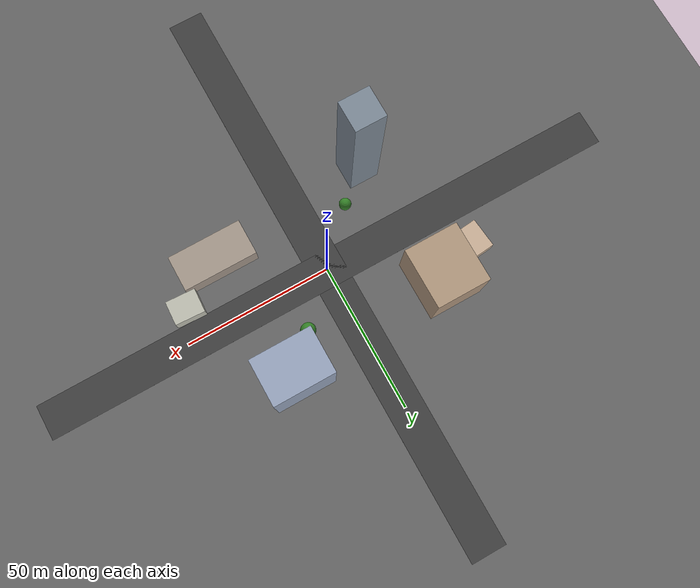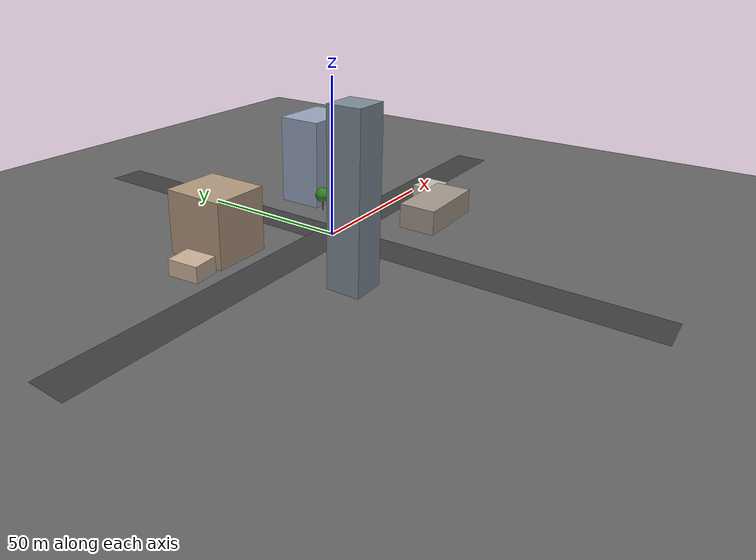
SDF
<?xml version="1.0"?>
<sdf version="1.9">
  <world name="urban">

    <!-- ── Physics ──────────────────────────────────────────────────── -->
    <physics name="1ms" type="ode">
      <max_step_size>0.001</max_step_size>
      <real_time_factor>1.0</real_time_factor>
      <real_time_update_rate>1000</real_time_update_rate>
    </physics>

    <!-- ── Plugins ──────────────────────────────────────────────────── -->
    <plugin filename="gz-sim-physics-system" name="gz::sim::systems::Physics"/>
    <plugin filename="gz-sim-user-commands-system" name="gz::sim::systems::UserCommands"/>
    <plugin filename="gz-sim-scene-broadcaster-system" name="gz::sim::systems::SceneBroadcaster"/>
    <plugin filename="gz-sim-sensors-system" name="gz::sim::systems::Sensors">
      <render_engine>ogre2</render_engine>
    </plugin>
    <plugin filename="gz-sim-imu-system" name="gz::sim::systems::Imu"/>
    <plugin filename="gz-sim-navsat-system" name="gz::sim::systems::NavSat"/>
    <plugin filename="gz-sim-air-pressure-system" name="gz::sim::systems::AirPressure"/>
    <plugin filename="gz-sim-magnetometer-system" name="gz::sim::systems::Magnetometer"/>

    <!-- ── GPS origin ───────────────────────────────────────────────── -->
    <spherical_coordinates>
      <surface_model>EARTH_WGS84</surface_model>
      <world_frame_orientation>ENU</world_frame_orientation>
      <latitude_deg>37.4220936</latitude_deg>
      <longitude_deg>-122.0840897</longitude_deg>
      <elevation>5.0</elevation>
      <heading_deg>0</heading_deg>
    </spherical_coordinates>

    <!-- ── Lighting ─────────────────────────────────────────────────── -->
    <light type="directional" name="sun">
      <cast_shadows>true</cast_shadows>
      <pose>0 0 200 0 0 0</pose>
      <diffuse>0.9 0.9 0.85 1</diffuse>
      <specular>0.3 0.3 0.3 1</specular>
      <direction>-0.4 0.2 -0.8</direction>
    </light>

    <scene>
      <ambient>0.4 0.4 0.4 1</ambient>
      <background>0.6 0.75 0.9 1</background>
      <shadows>true</shadows>
    </scene>

    <!-- ── Ground / roads ───────────────────────────────────────────── -->
    <model name="ground">
      <static>true</static>
      <link name="link">
        <collision name="collision">
          <geometry><plane><normal>0 0 1</normal><size>500 500</size></plane></geometry>
        </collision>
        <visual name="visual">
          <geometry><plane><normal>0 0 1</normal><size>500 500</size></plane></geometry>
          <material>
            <ambient>0.35 0.35 0.35 1</ambient>
            <diffuse>0.4 0.4 0.4 1</diffuse>
          </material>
        </visual>
      </link>
    </model>

    <!-- Main road (East-West) -->
    <model name="road_ew">
      <static>true</static>
      <link name="link">
        <visual name="visual">
          <geometry><box><size>200 12 0.02</size></box></geometry>
          <material>
            <ambient>0.2 0.2 0.2 1</ambient>
            <diffuse>0.25 0.25 0.25 1</diffuse>
          </material>
        </visual>
      </link>
      <pose>0 0 0.01 0 0 0</pose>
    </model>

    <!-- Main road (North-South) -->
    <model name="road_ns">
      <static>true</static>
      <link name="link">
        <visual name="visual">
          <geometry><box><size>12 200 0.02</size></box></geometry>
          <material>
            <ambient>0.2 0.2 0.2 1</ambient>
            <diffuse>0.25 0.25 0.25 1</diffuse>
          </material>
        </visual>
      </link>
      <pose>0 0 0.01 0 0 0</pose>
    </model>

    <!-- ── Buildings ────────────────────────────────────────────────── -->
    <!-- Office building NE -->
    <model name="building_ne">
      <static>true</static>
      <link name="link">
        <collision name="collision">
          <geometry><box><size>20 15 30</size></box></geometry>
        </collision>
        <visual name="visual">
          <geometry><box><size>20 15 30</size></box></geometry>
          <material>
            <ambient>0.5 0.55 0.65 1</ambient>
            <diffuse>0.6 0.65 0.75 1</diffuse>
            <specular>0.3 0.3 0.3 1</specular>
          </material>
        </visual>
      </link>
      <pose>25 25 15 0 0 0</pose>
    </model>

    <!-- Apartment block NW -->
    <model name="building_nw">
      <static>true</static>
      <link name="link">
        <collision name="collision">
          <geometry><box><size>18 20 20</size></box></geometry>
        </collision>
        <visual name="visual">
          <geometry><box><size>18 20 20</size></box></geometry>
          <material>
            <ambient>0.6 0.5 0.4 1</ambient>
            <diffuse>0.7 0.6 0.5 1</diffuse>
          </material>
        </visual>
      </link>
      <pose>-30 20 10 0 0 0</pose>
    </model>

    <!-- Short building SE -->
    <model name="building_se">
      <static>true</static>
      <link name="link">
        <collision name="collision">
          <geometry><box><size>25 12 8</size></box></geometry>
        </collision>
        <visual name="visual">
          <geometry><box><size>25 12 8</size></box></geometry>
          <material>
            <ambient>0.55 0.5 0.45 1</ambient>
            <diffuse>0.65 0.6 0.55 1</diffuse>
          </material>
        </visual>
      </link>
      <pose>30 -20 4 0 0 0</pose>
    </model>

    <!-- Tall tower SW -->
    <model name="tower_sw">
      <static>true</static>
      <link name="link">
        <collision name="collision">
          <geometry><box><size>10 10 50</size></box></geometry>
        </collision>
        <visual name="visual">
          <geometry><box><size>10 10 50</size></box></geometry>
          <material>
            <ambient>0.4 0.45 0.5 1</ambient>
            <diffuse>0.5 0.55 0.6 1</diffuse>
            <specular>0.4 0.4 0.4 1</specular>
          </material>
        </visual>
      </link>
      <pose>-25 -25 25 0 0 0</pose>
    </model>

    <!-- Small houses -->
    <model name="house_1">
      <static>true</static>
      <link name="link">
        <collision name="collision">
          <geometry><box><size>8 10 5</size></box></geometry>
        </collision>
        <visual name="visual">
          <geometry><box><size>8 10 5</size></box></geometry>
          <material>
            <ambient>0.7 0.6 0.5 1</ambient>
            <diffuse>0.8 0.7 0.6 1</diffuse>
          </material>
        </visual>
      </link>
      <pose>-45 15 2.5 0 0 0.1</pose>
    </model>

    <model name="house_2">
      <static>true</static>
      <link name="link">
        <collision name="collision">
          <geometry><box><size>10 8 6</size></box></geometry>
        </collision>
        <visual name="visual">
          <geometry><box><size>10 8 6</size></box></geometry>
          <material>
            <ambient>0.65 0.65 0.6 1</ambient>
            <diffuse>0.75 0.75 0.7 1</diffuse>
          </material>
        </visual>
      </link>
      <pose>45 -10 3 0 0 -0.05</pose>
    </model>

    <!-- ── Trees (simple cylinders + spheres) ───────────────────────── -->
    <model name="tree_1">
      <static>true</static>
      <link name="trunk">
        <collision name="collision">
          <geometry><cylinder><radius>0.15</radius><length>4</length></cylinder></geometry>
        </collision>
        <visual name="visual">
          <geometry><cylinder><radius>0.15</radius><length>4</length></cylinder></geometry>
          <material>
            <ambient>0.4 0.25 0.1 1</ambient>
            <diffuse>0.5 0.3 0.15 1</diffuse>
          </material>
        </visual>
        <pose>0 0 2 0 0 0</pose>
      </link>
      <link name="canopy">
        <visual name="visual">
          <geometry><sphere><radius>2.5</radius></sphere></geometry>
          <material>
            <ambient>0.15 0.4 0.1 1</ambient>
            <diffuse>0.2 0.5 0.15 1</diffuse>
          </material>
        </visual>
        <pose>0 0 5.5 0 0 0</pose>
      </link>
      <pose>15 15 0 0 0 0</pose>
    </model>

    <model name="tree_2">
      <static>true</static>
      <link name="trunk">
        <visual name="visual">
          <geometry><cylinder><radius>0.15</radius><length>3.5</length></cylinder></geometry>
          <material>
            <ambient>0.4 0.25 0.1 1</ambient>
            <diffuse>0.5 0.3 0.15 1</diffuse>
          </material>
        </visual>
        <pose>0 0 1.75 0 0 0</pose>
      </link>
      <link name="canopy">
        <visual name="visual">
          <geometry><sphere><radius>2.0</radius></sphere></geometry>
          <material>
            <ambient>0.15 0.4 0.1 1</ambient>
            <diffuse>0.2 0.5 0.15 1</diffuse>
          </material>
        </visual>
        <pose>0 0 5 0 0 0</pose>
      </link>
      <pose>-15 -15 0 0 0 0</pose>
    </model>

  </world>
</sdf>
